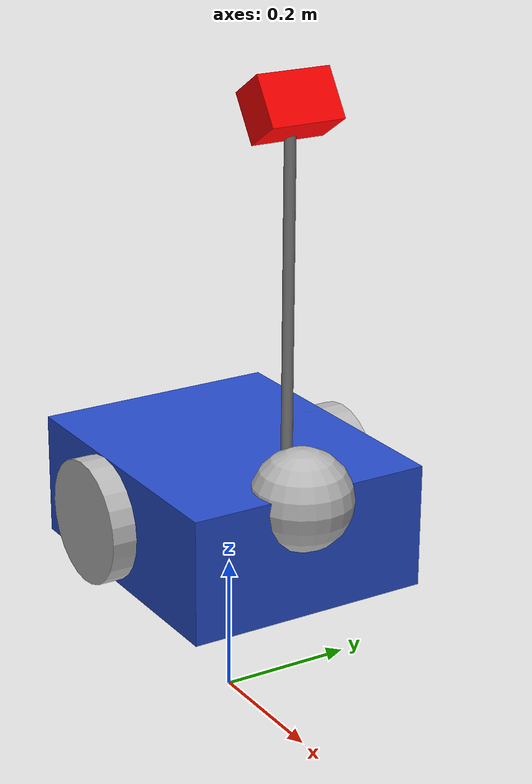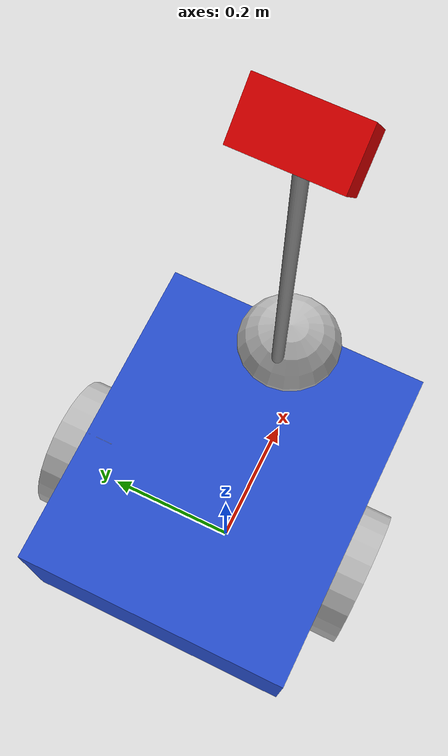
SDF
<?xml version="1.0"?>
<sdf version="1.6">
  <model name="racecar">
    <!-- 初始高度 -->
    <pose>0 0 0.3 0 0 0</pose>

    <!-- 主底盘 -->
    <link name="base_link">
      <collision name="base_collision">
        <geometry>
          <box>
            <size>0.43 0.36 0.18</size>
          </box>
        </geometry>
        <surface>
          <friction>
            <ode>
              <mu>1.0</mu>
              <mu2>1.0</mu2>
            </ode>
          </friction>
        </surface>
      </collision>

      <visual name="base_visual">
        <geometry>
          <box>
            <size>0.43 0.36 0.18</size>
          </box>
        </geometry>
        <material>
          <script>
            <uri>file://media/materials/scripts/gazebo.material</uri>
            <name>Gazebo/Blue</name>
          </script>
        </material>
      </visual>

      <inertial>
        <mass>25.0</mass>
        <inertia>
          <ixx>0.99</ixx>
          <iyy>3.06</iyy>
          <izz>4.14</izz>
          <ixy>0</ixy>
          <ixz>0</ixz>
          <iyz>0</iyz>
        </inertia>
      </inertial>
    </link>

    <!-- 左驱动轮 -->
    <link name="left_wheel">
      <pose relative_to="base_link">-0.036 0.18 0 1.57 0 0</pose>
      <collision name="collision">
        <geometry>
          <cylinder>
            <radius>0.09</radius>
            <length>0.072</length>
          </cylinder>
        </geometry>
      </collision>
      <visual name="visual">
        <geometry>
          <cylinder>
            <radius>0.09</radius>
            <length>0.072</length>
          </cylinder>
        </geometry>
      </visual>
    </link>

    <!-- 右驱动轮 -->
    <link name="right_wheel">
      <pose relative_to="base_link">-0.036 -0.18 0 1.57 0 0</pose>
      <collision name="collision">
        <geometry>
          <cylinder>
            <radius>0.09</radius>
            <length>0.072</length>
          </cylinder>
        </geometry>
      </collision>
      <visual name="visual">
        <geometry>
          <cylinder>
            <radius>0.09</radius>
            <length>0.072</length>
          </cylinder>
        </geometry>
      </visual>
    </link>

    <!-- 前支撑轮 -->
    <link name="caster_wheel">
      <pose relative_to="base_link">0.19 0 0.072 0 0 0</pose>
      <collision name="collision">
        <geometry>
          <sphere>
            <radius>0.072</radius>
          </sphere>
        </geometry>
      </collision>
      <visual name="visual">
        <geometry>
          <sphere>
            <radius>0.072</radius>
          </sphere>
        </geometry>
      </visual>
    </link>

    <!-- 摄像头支柱 - 新增 -->
    <link name="camera_pole">
      <pose relative_to="base_link">0.15 0 0.3 0 0 0</pose>
      <visual name="visual">
        <geometry>
          <cylinder>
            <radius>0.008</radius>
            <length>0.55</length>
          </cylinder>
        </geometry>
        <material>
          <ambient>0.5 0.5 0.5 1</ambient>
          <diffuse>0.5 0.5 0.5 1</diffuse>
        </material>
      </visual>
      <collision name="collision">
        <geometry>
          <cylinder>
            <radius>0.008</radius>
            <length>0.55</length>
          </cylinder>
        </geometry>
      </collision>
    </link>

    <!-- 摄像头 -->
    <link name="camera_link">
      <pose relative_to="base_link">0.15 0 0.6 0 1.0 0</pose>
      <visual name="visual">
        <geometry>
          <box>
            <size>0.072 0.108 0.06</size>
          </box>
        </geometry>
        <material>
          <ambient>1 0 0 1</ambient>
          <diffuse>1 0 0 1</diffuse>
        </material>
      </visual>
      <sensor type="camera" name="camera_sensor">
        <pose>0 0 0 0 0 0</pose>
        <update_rate>30.0</update_rate>
        <camera name="main">
          <horizontal_fov>1.047</horizontal_fov>
          <image>
            <width>640</width>
            <height>480</height>
            <format>R8G8B8</format>
          </image>
          <clip>
            <near>0.05</near>
            <far>100</far>
          </clip>
        </camera>
        <plugin name="camera_controller" filename="libgazebo_ros_camera.so">
          <ros>
            <namespace>/</namespace>
            <remapping>image_raw:=camera_sensor/image_raw</remapping>
            <remapping>camera_info:=camera_sensor/camera_info</remapping>
          </ros>
        </plugin>
      </sensor>
    </link>

    <!-- 关节定义 -->
    <joint name="left_wheel_joint" type="revolute">
      <child>left_wheel</child>
      <parent>base_link</parent>
      <axis>
        <xyz>0 0 -1</xyz>
        <limit>
          <lower>-1e16</lower>
          <upper>1e16</upper>
        </limit>
      </axis>
    </joint>

    <joint name="right_wheel_joint" type="revolute">
      <child>right_wheel</child>
      <parent>base_link</parent>
      <axis>
        <xyz>0 0 -1</xyz>
        <limit>
          <lower>-1e16</lower>
          <upper>1e16</upper>
        </limit>
      </axis>
    </joint>

    <joint name="caster_joint" type="fixed">
      <child>caster_wheel</child>
      <parent>base_link</parent>
    </joint>

    <!-- 新增：摄像头支柱关节 -->
    <joint name="camera_pole_joint" type="fixed">
      <child>camera_pole</child>
      <parent>base_link</parent>
    </joint>

    <!-- 修改：摄像头现在连接到支柱，而不是直接连到底盘 -->
    <joint name="camera_to_pole_joint" type="fixed">
      <child>camera_link</child>
      <parent>camera_pole</parent>
    </joint>

    <!-- 差速驱动控制器 -->
    <plugin name="diff_drive_controller" filename="libgazebo_ros_diff_drive.so">
      <ros>
        <namespace>/</namespace>
      </ros>

      <!-- 指定驱动轮关节 -->
      <left_joint>left_wheel_joint</left_joint>
      <right_joint>right_wheel_joint</right_joint>

      <!-- 车辆参数 -->
      <wheel_separation>0.36</wheel_separation>
      <wheel_diameter>0.18</wheel_diameter>
      <robot_base_frame>base_link</robot_base_frame>

      <!-- 控制话题 -->
      <command_topic>cmd_vel</command_topic>

      <!-- 里程计（可选） -->
      <publish_odom>false</publish_odom>
      <publish_odom_tf>false</publish_odom_tf>

      <!-- 增加扭矩确保能动 -->
      <max_wheel_torque>50</max_wheel_torque>
      <max_wheel_acceleration>20</max_wheel_acceleration>
    </plugin>
  </model>
</sdf>
